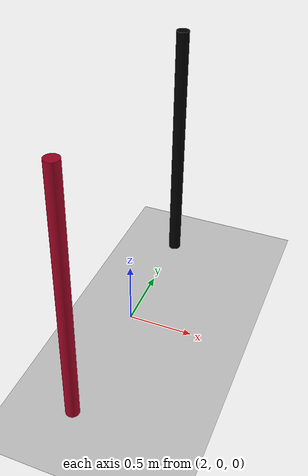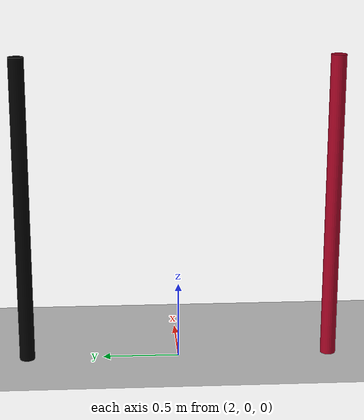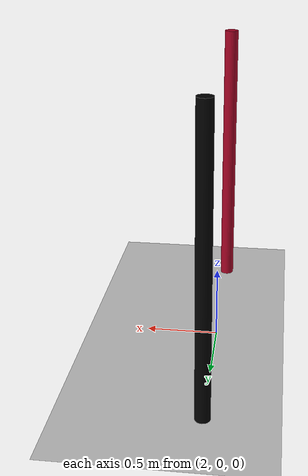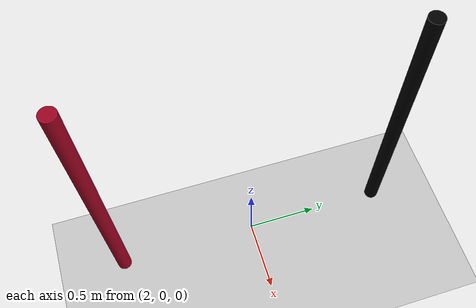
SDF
<?xml version="1.0" ?>
<sdf version="1.6">
  <world name="ros_logo">
    <!-- Ground plane -->
    <include>
      <uri>model://ground_plane</uri>
    </include>

    <!-- Luz principal -->
    <include>
      <uri>model://sun</uri>
    </include>

    <!-- NUMERO 1 -->
    <!-- BLOQUE DERECHO-->
    <model name="wall_D_3_1">
      <static>true</static>
      <pose>2 1 1 0 0 0</pose>
      <link name="link"><collision name="wall"><laser_retro>0</laser_retro>
        <geometry><cylinder><radius>0.05</radius><length>2.0</length></cylinder></geometry></collision>
      <visual name="vis"><geometry><cylinder><radius>0.05</radius><length>2.0</length></cylinder></geometry>
      <material><ambient>0.0 0.0 0.0 1</ambient><diffuse>0.0 0.0 0.0 1</diffuse></material></visual></link>
    </model>
    <!-- BLOQUE IZQUIERDO-->
    <model name="wall_I_3_5">
      <static>true</static>
      <pose>2 -1 1 0 0 0</pose>
      <link name="link"><collision name="wall"><laser_retro>255</laser_retro>
        <geometry><cylinder><radius>0.05</radius><length>2.0</length></cylinder></geometry></collision>
      <visual name="vis"><geometry><cylinder><radius>0.05</radius><length>2.0</length></cylinder></geometry>
      <material><ambient>0.627 0.012 0.133 1</ambient><diffuse>0.627 0.012 0.133 1</diffuse></material></visual></link>
    </model>

    <gui fullscreen='0'>
      <camera name='user_camera'>
        <pose>0.05 -0.05 7.2048 0 1.570796 0</pose>
        <view_controller>orbit</view_controller>
        <projection_type>orthographic</projection_type>
      </camera>
    </gui>

    </world>
</sdf>
